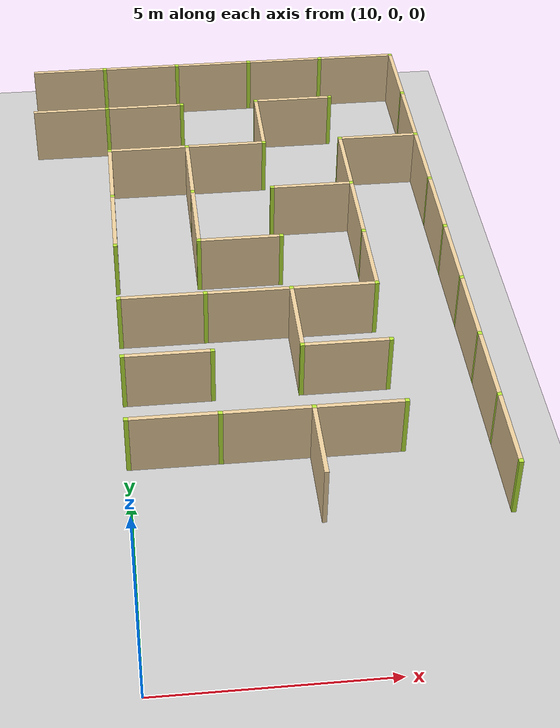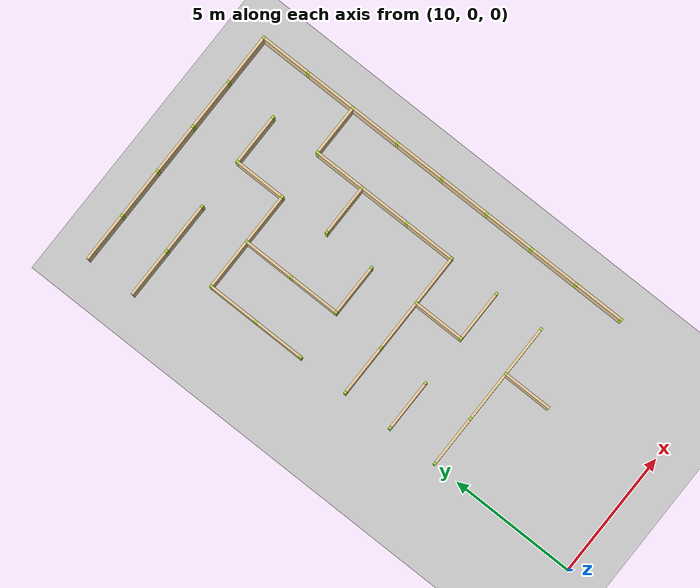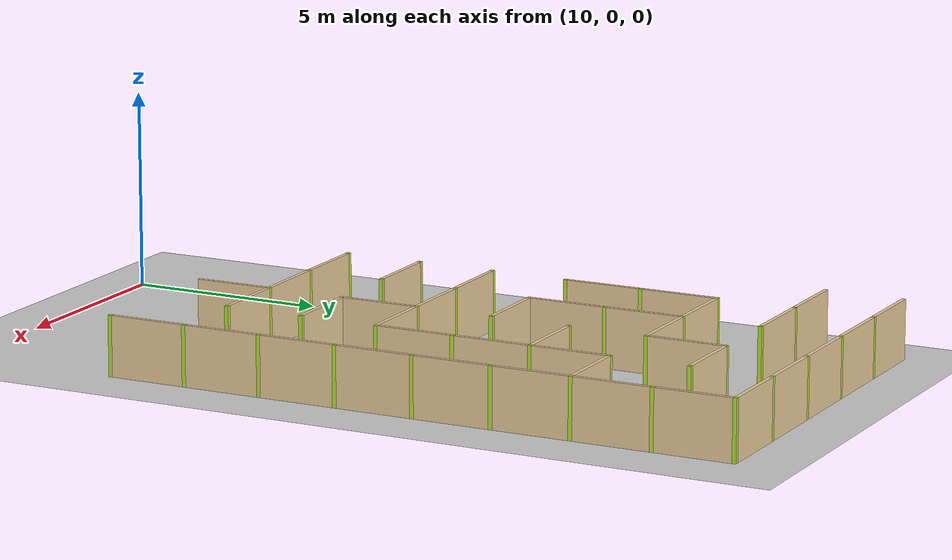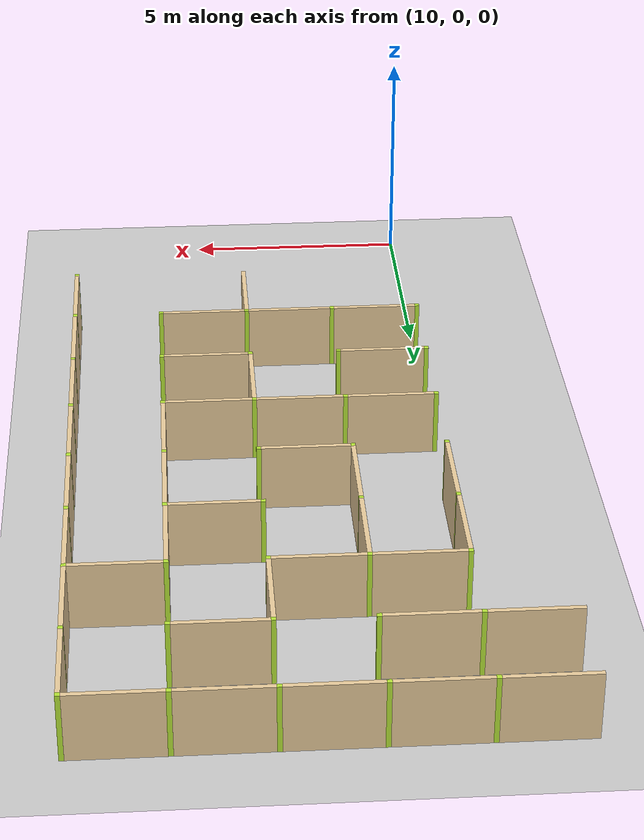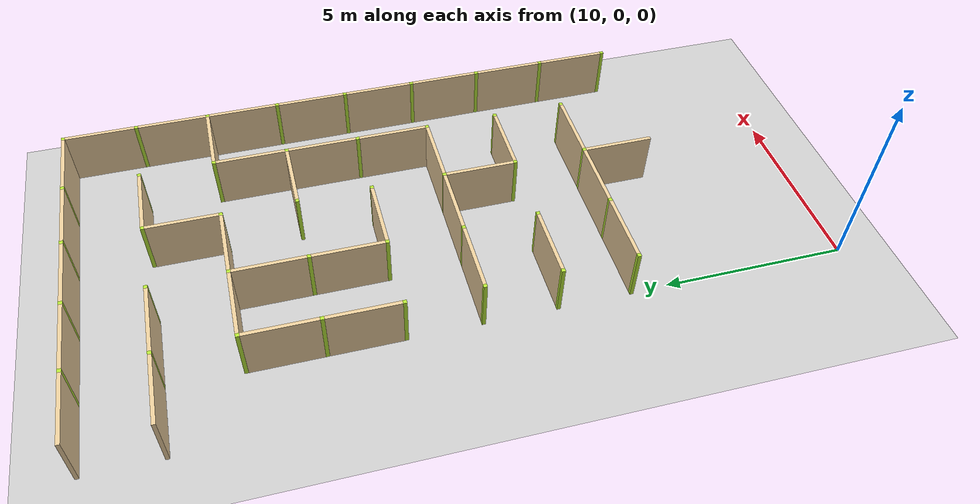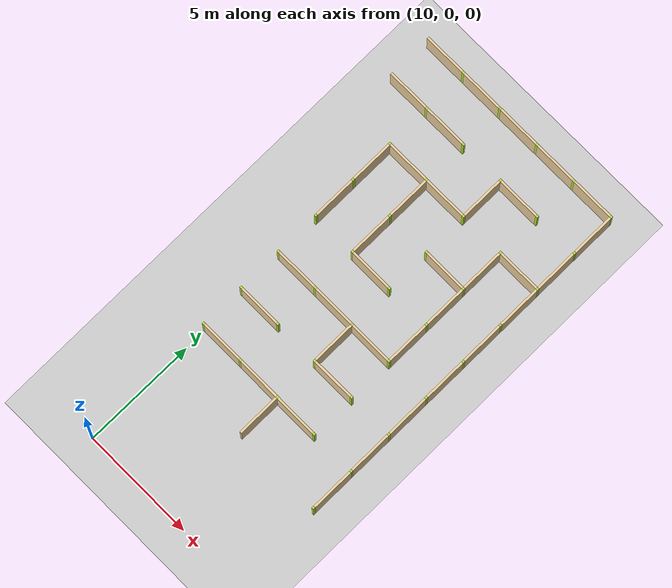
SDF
<sdf version="1.4">
 <world name="maze_world">
  <model name="ground">
   <static>true</static>
   <link name="ground_link">
    <collision name="collision1"><geometry><plane><normal>0 0 1</normal></plane></geometry></collision>
    <visual name="visual1"><geometry><plane><normal>0 0 1</normal><size>100 100</size></plane></geometry></visual>
   </link>
  </model>
  <model name="Untitled">
   <link name="Wall_14_0_h">
    <collision name="Wall_0_Collision">
     <geometry><box><size>1.9 0.1 1.5</size></box></geometry>
     <pose>0 0 0.75 0 -0 0</pose>
    </collision>
    <visual name="Wall_0_Visual">
     <pose>0 0 0.75 0 -0 0</pose>
     <geometry><box><size>1.9 0.1 1.5</size></box></geometry>
     <material>
      <script><uri>file://media/materials/scripts/gazebo.material</uri><name>Gazebo/Grey</name></script>
      <ambient>0.921569 0.807843 0.615686 1</ambient>
     </material>
     <meta><layer>0</layer></meta>
    </visual>
    <pose>9.0 20 0 0 -0 0</pose>
   </link>
   <link name="Wall_15_0_h">
    <collision name="Wall_0_Collision">
     <geometry><box><size>1.9 0.1 1.5</size></box></geometry>
     <pose>0 0 0.75 0 -0 0</pose>
    </collision>
    <visual name="Wall_0_Visual">
     <pose>0 0 0.75 0 -0 0</pose>
     <geometry><box><size>1.9 0.1 1.5</size></box></geometry>
     <material>
      <script><uri>file://media/materials/scripts/gazebo.material</uri><name>Gazebo/Grey</name></script>
      <ambient>0.921569 0.807843 0.615686 1</ambient>
     </material>
     <meta><layer>0</layer></meta>
    </visual>
    <pose>11.0 20 0 0 -0 0</pose>
   </link>
   <link name="Joint_10_20">
    <collision name="Wall_2_Collision">
     <geometry><box><size>0.1 0.1 1.5</size></box></geometry>
     <pose>0 0 0.75 0 -0 0</pose>
    </collision>
    <visual name="Wall_2_Visual">
     <pose>0 0 0.75 0 -0 0</pose>
     <geometry><box><size>0.1 0.1 1.5</size></box></geometry>
     <material>
      <script><uri>file://media/materials/scripts/gazebo.material</uri><name>Gazebo/Grey</name></script>
      <ambient>0.721569 0.907843 0.215686 1</ambient>
     </material>
     <meta><layer>0</layer></meta>
    </visual>
    <pose>10 20 0 0 -0 0</pose>
   </link>
   <link name="Wall_16_0_h">
    <collision name="Wall_0_Collision">
     <geometry><box><size>1.9 0.1 1.5</size></box></geometry>
     <pose>0 0 0.75 0 -0 0</pose>
    </collision>
    <visual name="Wall_0_Visual">
     <pose>0 0 0.75 0 -0 0</pose>
     <geometry><box><size>1.9 0.1 1.5</size></box></geometry>
     <material>
      <script><uri>file://media/materials/scripts/gazebo.material</uri><name>Gazebo/Grey</name></script>
      <ambient>0.921569 0.807843 0.615686 1</ambient>
     </material>
     <meta><layer>0</layer></meta>
    </visual>
    <pose>13.0 20 0 0 -0 0</pose>
   </link>
   <link name="Joint_12_20">
    <collision name="Wall_2_Collision">
     <geometry><box><size>0.1 0.1 1.5</size></box></geometry>
     <pose>0 0 0.75 0 -0 0</pose>
    </collision>
    <visual name="Wall_2_Visual">
     <pose>0 0 0.75 0 -0 0</pose>
     <geometry><box><size>0.1 0.1 1.5</size></box></geometry>
     <material>
      <script><uri>file://media/materials/scripts/gazebo.material</uri><name>Gazebo/Grey</name></script>
      <ambient>0.721569 0.907843 0.215686 1</ambient>
     </material>
     <meta><layer>0</layer></meta>
    </visual>
    <pose>12 20 0 0 -0 0</pose>
   </link>
   <link name="Wall_17_0_h">
    <collision name="Wall_0_Collision">
     <geometry><box><size>1.9 0.1 1.5</size></box></geometry>
     <pose>0 0 0.75 0 -0 0</pose>
    </collision>
    <visual name="Wall_0_Visual">
     <pose>0 0 0.75 0 -0 0</pose>
     <geometry><box><size>1.9 0.1 1.5</size></box></geometry>
     <material>
      <script><uri>file://media/materials/scripts/gazebo.material</uri><name>Gazebo/Grey</name></script>
      <ambient>0.921569 0.807843 0.615686 1</ambient>
     </material>
     <meta><layer>0</layer></meta>
    </visual>
    <pose>15.0 20 0 0 -0 0</pose>
   </link>
   <link name="Joint_14_20">
    <collision name="Wall_2_Collision">
     <geometry><box><size>0.1 0.1 1.5</size></box></geometry>
     <pose>0 0 0.75 0 -0 0</pose>
    </collision>
    <visual name="Wall_2_Visual">
     <pose>0 0 0.75 0 -0 0</pose>
     <geometry><box><size>0.1 0.1 1.5</size></box></geometry>
     <material>
      <script><uri>file://media/materials/scripts/gazebo.material</uri><name>Gazebo/Grey</name></script>
      <ambient>0.721569 0.907843 0.215686 1</ambient>
     </material>
     <meta><layer>0</layer></meta>
    </visual>
    <pose>14 20 0 0 -0 0</pose>
   </link>
   <link name="Wall_18_0_h">
    <collision name="Wall_0_Collision">
     <geometry><box><size>1.9 0.1 1.5</size></box></geometry>
     <pose>0 0 0.75 0 -0 0</pose>
    </collision>
    <visual name="Wall_0_Visual">
     <pose>0 0 0.75 0 -0 0</pose>
     <geometry><box><size>1.9 0.1 1.5</size></box></geometry>
     <material>
      <script><uri>file://media/materials/scripts/gazebo.material</uri><name>Gazebo/Grey</name></script>
      <ambient>0.921569 0.807843 0.615686 1</ambient>
     </material>
     <meta><layer>0</layer></meta>
    </visual>
    <pose>17.0 20 0 0 -0 0</pose>
   </link>
   <link name="Joint_16_20">
    <collision name="Wall_2_Collision">
     <geometry><box><size>0.1 0.1 1.5</size></box></geometry>
     <pose>0 0 0.75 0 -0 0</pose>
    </collision>
    <visual name="Wall_2_Visual">
     <pose>0 0 0.75 0 -0 0</pose>
     <geometry><box><size>0.1 0.1 1.5</size></box></geometry>
     <material>
      <script><uri>file://media/materials/scripts/gazebo.material</uri><name>Gazebo/Grey</name></script>
      <ambient>0.721569 0.907843 0.215686 1</ambient>
     </material>
     <meta><layer>0</layer></meta>
    </visual>
    <pose>16 20 0 0 -0 0</pose>
   </link>
   <link name="Wall_19_0_v">
    <collision name="Wall_0_Collision">
     <geometry><box><size>1.9 0.1 1.5</size></box></geometry>
     <pose>0 0 0.75 0 -0 0</pose>
    </collision>
    <visual name="Wall_0_Visual">
     <pose>0 0 0.75 0 -0 0</pose>
     <geometry><box><size>1.9 0.1 1.5</size></box></geometry>
     <material>
      <script><uri>file://media/materials/scripts/gazebo.material</uri><name>Gazebo/Grey</name></script>
      <ambient>0.921569 0.807843 0.615686 1</ambient>
     </material>
     <meta><layer>0</layer></meta>
    </visual>
    <pose>18 19.0 0 0 -0 1.5708</pose>
   </link>
   <link name="Joint_18_20">
    <collision name="Wall_2_Collision">
     <geometry><box><size>0.1 0.1 1.5</size></box></geometry>
     <pose>0 0 0.75 0 -0 0</pose>
    </collision>
    <visual name="Wall_2_Visual">
     <pose>0 0 0.75 0 -0 0</pose>
     <geometry><box><size>0.1 0.1 1.5</size></box></geometry>
     <material>
      <script><uri>file://media/materials/scripts/gazebo.material</uri><name>Gazebo/Grey</name></script>
      <ambient>0.721569 0.907843 0.215686 1</ambient>
     </material>
     <meta><layer>0</layer></meta>
    </visual>
    <pose>18 20 0 0 -0 0</pose>
   </link>
   <link name="Wall_14_1_h">
    <collision name="Wall_0_Collision">
     <geometry><box><size>1.9 0.1 1.5</size></box></geometry>
     <pose>0 0 0.75 0 -0 0</pose>
    </collision>
    <visual name="Wall_0_Visual">
     <pose>0 0 0.75 0 -0 0</pose>
     <geometry><box><size>1.9 0.1 1.5</size></box></geometry>
     <material>
      <script><uri>file://media/materials/scripts/gazebo.material</uri><name>Gazebo/Grey</name></script>
      <ambient>0.921569 0.807843 0.615686 1</ambient>
     </material>
     <meta><layer>0</layer></meta>
    </visual>
    <pose>9.0 18 0 0 -0 0</pose>
   </link>
   <link name="Wall_15_1_h">
    <collision name="Wall_0_Collision">
     <geometry><box><size>1.9 0.1 1.5</size></box></geometry>
     <pose>0 0 0.75 0 -0 0</pose>
    </collision>
    <visual name="Wall_0_Visual">
     <pose>0 0 0.75 0 -0 0</pose>
     <geometry><box><size>1.9 0.1 1.5</size></box></geometry>
     <material>
      <script><uri>file://media/materials/scripts/gazebo.material</uri><name>Gazebo/Grey</name></script>
      <ambient>0.921569 0.807843 0.615686 1</ambient>
     </material>
     <meta><layer>0</layer></meta>
    </visual>
    <pose>11.0 18 0 0 -0 0</pose>
   </link>
   <link name="Joint_10_18">
    <collision name="Wall_2_Collision">
     <geometry><box><size>0.1 0.1 1.5</size></box></geometry>
     <pose>0 0 0.75 0 -0 0</pose>
    </collision>
    <visual name="Wall_2_Visual">
     <pose>0 0 0.75 0 -0 0</pose>
     <geometry><box><size>0.1 0.1 1.5</size></box></geometry>
     <material>
      <script><uri>file://media/materials/scripts/gazebo.material</uri><name>Gazebo/Grey</name></script>
      <ambient>0.721569 0.907843 0.215686 1</ambient>
     </material>
     <meta><layer>0</layer></meta>
    </visual>
    <pose>10 18 0 0 -0 0</pose>
   </link>
   <link name="Joint_12_18">
    <collision name="Wall_2_Collision">
     <geometry><box><size>0.1 0.1 1.5</size></box></geometry>
     <pose>0 0 0.75 0 -0 0</pose>
    </collision>
    <visual name="Wall_2_Visual">
     <pose>0 0 0.75 0 -0 0</pose>
     <geometry><box><size>0.1 0.1 1.5</size></box></geometry>
     <material>
      <script><uri>file://media/materials/scripts/gazebo.material</uri><name>Gazebo/Grey</name></script>
      <ambient>0.721569 0.907843 0.215686 1</ambient>
     </material>
     <meta><layer>0</layer></meta>
    </visual>
    <pose>12 18 0 0 -0 0</pose>
   </link>
   <link name="Wall_17_1_h">
    <collision name="Wall_0_Collision">
     <geometry><box><size>1.9 0.1 1.5</size></box></geometry>
     <pose>0 0 0.75 0 -0 0</pose>
    </collision>
    <visual name="Wall_0_Visual">
     <pose>0 0 0.75 0 -0 0</pose>
     <geometry><box><size>1.9 0.1 1.5</size></box></geometry>
     <material>
      <script><uri>file://media/materials/scripts/gazebo.material</uri><name>Gazebo/Grey</name></script>
      <ambient>0.921569 0.807843 0.615686 1</ambient>
     </material>
     <meta><layer>0</layer></meta>
    </visual>
    <pose>15.0 18 0 0 -0 0</pose>
   </link>
   <link name="Wall_17_1_v">
    <collision name="Wall_0_Collision">
     <geometry><box><size>1.9 0.1 1.5</size></box></geometry>
     <pose>0 0 0.75 0 -0 0</pose>
    </collision>
    <visual name="Wall_0_Visual">
     <pose>0 0 0.75 0 -0 0</pose>
     <geometry><box><size>1.9 0.1 1.5</size></box></geometry>
     <material>
      <script><uri>file://media/materials/scripts/gazebo.material</uri><name>Gazebo/Grey</name></script>
      <ambient>0.921569 0.807843 0.615686 1</ambient>
     </material>
     <meta><layer>0</layer></meta>
    </visual>
    <pose>14 17.0 0 0 -0 1.5708</pose>
   </link>
   <link name="Joint_14_18">
    <collision name="Wall_2_Collision">
     <geometry><box><size>0.1 0.1 1.5</size></box></geometry>
     <pose>0 0 0.75 0 -0 0</pose>
    </collision>
    <visual name="Wall_2_Visual">
     <pose>0 0 0.75 0 -0 0</pose>
     <geometry><box><size>0.1 0.1 1.5</size></box></geometry>
     <material>
      <script><uri>file://media/materials/scripts/gazebo.material</uri><name>Gazebo/Grey</name></script>
      <ambient>0.721569 0.907843 0.215686 1</ambient>
     </material>
     <meta><layer>0</layer></meta>
    </visual>
    <pose>14 18 0 0 -0 0</pose>
   </link>
   <link name="Joint_16_18">
    <collision name="Wall_2_Collision">
     <geometry><box><size>0.1 0.1 1.5</size></box></geometry>
     <pose>0 0 0.75 0 -0 0</pose>
    </collision>
    <visual name="Wall_2_Visual">
     <pose>0 0 0.75 0 -0 0</pose>
     <geometry><box><size>0.1 0.1 1.5</size></box></geometry>
     <material>
      <script><uri>file://media/materials/scripts/gazebo.material</uri><name>Gazebo/Grey</name></script>
      <ambient>0.721569 0.907843 0.215686 1</ambient>
     </material>
     <meta><layer>0</layer></meta>
    </visual>
    <pose>16 18 0 0 -0 0</pose>
   </link>
   <link name="Wall_19_1_v">
    <collision name="Wall_0_Collision">
     <geometry><box><size>1.9 0.1 1.5</size></box></geometry>
     <pose>0 0 0.75 0 -0 0</pose>
    </collision>
    <visual name="Wall_0_Visual">
     <pose>0 0 0.75 0 -0 0</pose>
     <geometry><box><size>1.9 0.1 1.5</size></box></geometry>
     <material>
      <script><uri>file://media/materials/scripts/gazebo.material</uri><name>Gazebo/Grey</name></script>
      <ambient>0.921569 0.807843 0.615686 1</ambient>
     </material>
     <meta><layer>0</layer></meta>
    </visual>
    <pose>18 17.0 0 0 -0 1.5708</pose>
   </link>
   <link name="Joint_18_18">
    <collision name="Wall_2_Collision">
     <geometry><box><size>0.1 0.1 1.5</size></box></geometry>
     <pose>0 0 0.75 0 -0 0</pose>
    </collision>
    <visual name="Wall_2_Visual">
     <pose>0 0 0.75 0 -0 0</pose>
     <geometry><box><size>0.1 0.1 1.5</size></box></geometry>
     <material>
      <script><uri>file://media/materials/scripts/gazebo.material</uri><name>Gazebo/Grey</name></script>
      <ambient>0.721569 0.907843 0.215686 1</ambient>
     </material>
     <meta><layer>0</layer></meta>
    </visual>
    <pose>18 18 0 0 -0 0</pose>
   </link>
   <link name="Wall_15_2_h">
    <collision name="Wall_0_Collision">
     <geometry><box><size>1.9 0.1 1.5</size></box></geometry>
     <pose>0 0 0.75 0 -0 0</pose>
    </collision>
    <visual name="Wall_0_Visual">
     <pose>0 0 0.75 0 -0 0</pose>
     <geometry><box><size>1.9 0.1 1.5</size></box></geometry>
     <material>
      <script><uri>file://media/materials/scripts/gazebo.material</uri><name>Gazebo/Grey</name></script>
      <ambient>0.921569 0.807843 0.615686 1</ambient>
     </material>
     <meta><layer>0</layer></meta>
    </visual>
    <pose>11.0 16 0 0 -0 0</pose>
   </link>
   <link name="Wall_15_2_v">
    <collision name="Wall_0_Collision">
     <geometry><box><size>1.9 0.1 1.5</size></box></geometry>
     <pose>0 0 0.75 0 -0 0</pose>
    </collision>
    <visual name="Wall_0_Visual">
     <pose>0 0 0.75 0 -0 0</pose>
     <geometry><box><size>1.9 0.1 1.5</size></box></geometry>
     <material>
      <script><uri>file://media/materials/scripts/gazebo.material</uri><name>Gazebo/Grey</name></script>
      <ambient>0.921569 0.807843 0.615686 1</ambient>
     </material>
     <meta><layer>0</layer></meta>
    </visual>
    <pose>10 15.0 0 0 -0 1.5708</pose>
   </link>
   <link name="Joint_10_16">
    <collision name="Wall_2_Collision">
     <geometry><box><size>0.1 0.1 1.5</size></box></geometry>
     <pose>0 0 0.75 0 -0 0</pose>
    </collision>
    <visual name="Wall_2_Visual">
     <pose>0 0 0.75 0 -0 0</pose>
     <geometry><box><size>0.1 0.1 1.5</size></box></geometry>
     <material>
      <script><uri>file://media/materials/scripts/gazebo.material</uri><name>Gazebo/Grey</name></script>
      <ambient>0.721569 0.907843 0.215686 1</ambient>
     </material>
     <meta><layer>0</layer></meta>
    </visual>
    <pose>10 16 0 0 -0 0</pose>
   </link>
   <link name="Wall_16_2_h">
    <collision name="Wall_0_Collision">
     <geometry><box><size>1.9 0.1 1.5</size></box></geometry>
     <pose>0 0 0.75 0 -0 0</pose>
    </collision>
    <visual name="Wall_0_Visual">
     <pose>0 0 0.75 0 -0 0</pose>
     <geometry><box><size>1.9 0.1 1.5</size></box></geometry>
     <material>
      <script><uri>file://media/materials/scripts/gazebo.material</uri><name>Gazebo/Grey</name></script>
      <ambient>0.921569 0.807843 0.615686 1</ambient>
     </material>
     <meta><layer>0</layer></meta>
    </visual>
    <pose>13.0 16 0 0 -0 0</pose>
   </link>
   <link name="Wall_16_2_v">
    <collision name="Wall_0_Collision">
     <geometry><box><size>1.9 0.1 1.5</size></box></geometry>
     <pose>0 0 0.75 0 -0 0</pose>
    </collision>
    <visual name="Wall_0_Visual">
     <pose>0 0 0.75 0 -0 0</pose>
     <geometry><box><size>1.9 0.1 1.5</size></box></geometry>
     <material>
      <script><uri>file://media/materials/scripts/gazebo.material</uri><name>Gazebo/Grey</name></script>
      <ambient>0.921569 0.807843 0.615686 1</ambient>
     </material>
     <meta><layer>0</layer></meta>
    </visual>
    <pose>12 15.0 0 0 -0 1.5708</pose>
   </link>
   <link name="Joint_12_16">
    <collision name="Wall_2_Collision">
     <geometry><box><size>0.1 0.1 1.5</size></box></geometry>
     <pose>0 0 0.75 0 -0 0</pose>
    </collision>
    <visual name="Wall_2_Visual">
     <pose>0 0 0.75 0 -0 0</pose>
     <geometry><box><size>0.1 0.1 1.5</size></box></geometry>
     <material>
      <script><uri>file://media/materials/scripts/gazebo.material</uri><name>Gazebo/Grey</name></script>
      <ambient>0.721569 0.907843 0.215686 1</ambient>
     </material>
     <meta><layer>0</layer></meta>
    </visual>
    <pose>12 16 0 0 -0 0</pose>
   </link>
   <link name="Joint_14_16">
    <collision name="Wall_2_Collision">
     <geometry><box><size>0.1 0.1 1.5</size></box></geometry>
     <pose>0 0 0.75 0 -0 0</pose>
    </collision>
    <visual name="Wall_2_Visual">
     <pose>0 0 0.75 0 -0 0</pose>
     <geometry><box><size>0.1 0.1 1.5</size></box></geometry>
     <material>
      <script><uri>file://media/materials/scripts/gazebo.material</uri><name>Gazebo/Grey</name></script>
      <ambient>0.721569 0.907843 0.215686 1</ambient>
     </material>
     <meta><layer>0</layer></meta>
    </visual>
    <pose>14 16 0 0 -0 0</pose>
   </link>
   <link name="Wall_18_2_h">
    <collision name="Wall_0_Collision">
     <geometry><box><size>1.9 0.1 1.5</size></box></geometry>
     <pose>0 0 0.75 0 -0 0</pose>
    </collision>
    <visual name="Wall_0_Visual">
     <pose>0 0 0.75 0 -0 0</pose>
     <geometry><box><size>1.9 0.1 1.5</size></box></geometry>
     <material>
      <script><uri>file://media/materials/scripts/gazebo.material</uri><name>Gazebo/Grey</name></script>
      <ambient>0.921569 0.807843 0.615686 1</ambient>
     </material>
     <meta><layer>0</layer></meta>
    </visual>
    <pose>17.0 16 0 0 -0 0</pose>
   </link>
   <link name="Wall_18_2_v">
    <collision name="Wall_0_Collision">
     <geometry><box><size>1.9 0.1 1.5</size></box></geometry>
     <pose>0 0 0.75 0 -0 0</pose>
    </collision>
    <visual name="Wall_0_Visual">
     <pose>0 0 0.75 0 -0 0</pose>
     <geometry><box><size>1.9 0.1 1.5</size></box></geometry>
     <material>
      <script><uri>file://media/materials/scripts/gazebo.material</uri><name>Gazebo/Grey</name></script>
      <ambient>0.921569 0.807843 0.615686 1</ambient>
     </material>
     <meta><layer>0</layer></meta>
    </visual>
    <pose>16 15.0 0 0 -0 1.5708</pose>
   </link>
   <link name="Joint_16_16">
    <collision name="Wall_2_Collision">
     <geometry><box><size>0.1 0.1 1.5</size></box></geometry>
     <pose>0 0 0.75 0 -0 0</pose>
    </collision>
    <visual name="Wall_2_Visual">
     <pose>0 0 0.75 0 -0 0</pose>
     <geometry><box><size>0.1 0.1 1.5</size></box></geometry>
     <material>
      <script><uri>file://media/materials/scripts/gazebo.material</uri><name>Gazebo/Grey</name></script>
      <ambient>0.721569 0.907843 0.215686 1</ambient>
     </material>
     <meta><layer>0</layer></meta>
    </visual>
    <pose>16 16 0 0 -0 0</pose>
   </link>
   <link name="Wall_19_2_v">
    <collision name="Wall_0_Collision">
     <geometry><box><size>1.9 0.1 1.5</size></box></geometry>
     <pose>0 0 0.75 0 -0 0</pose>
    </collision>
    <visual name="Wall_0_Visual">
     <pose>0 0 0.75 0 -0 0</pose>
     <geometry><box><size>1.9 0.1 1.5</size></box></geometry>
     <material>
      <script><uri>file://media/materials/scripts/gazebo.material</uri><name>Gazebo/Grey</name></script>
      <ambient>0.921569 0.807843 0.615686 1</ambient>
     </material>
     <meta><layer>0</layer></meta>
    </visual>
    <pose>18 15.0 0 0 -0 1.5708</pose>
   </link>
   <link name="Joint_18_16">
    <collision name="Wall_2_Collision">
     <geometry><box><size>0.1 0.1 1.5</size></box></geometry>
     <pose>0 0 0.75 0 -0 0</pose>
    </collision>
    <visual name="Wall_2_Visual">
     <pose>0 0 0.75 0 -0 0</pose>
     <geometry><box><size>0.1 0.1 1.5</size></box></geometry>
     <material>
      <script><uri>file://media/materials/scripts/gazebo.material</uri><name>Gazebo/Grey</name></script>
      <ambient>0.721569 0.907843 0.215686 1</ambient>
     </material>
     <meta><layer>0</layer></meta>
    </visual>
    <pose>18 16 0 0 -0 0</pose>
   </link>
   <link name="Wall_15_3_v">
    <collision name="Wall_0_Collision">
     <geometry><box><size>1.9 0.1 1.5</size></box></geometry>
     <pose>0 0 0.75 0 -0 0</pose>
    </collision>
    <visual name="Wall_0_Visual">
     <pose>0 0 0.75 0 -0 0</pose>
     <geometry><box><size>1.9 0.1 1.5</size></box></geometry>
     <material>
      <script><uri>file://media/materials/scripts/gazebo.material</uri><name>Gazebo/Grey</name></script>
      <ambient>0.921569 0.807843 0.615686 1</ambient>
     </material>
     <meta><layer>0</layer></meta>
    </visual>
    <pose>10 13.0 0 0 -0 1.5708</pose>
   </link>
   <link name="Joint_10_14">
    <collision name="Wall_2_Collision">
     <geometry><box><size>0.1 0.1 1.5</size></box></geometry>
     <pose>0 0 0.75 0 -0 0</pose>
    </collision>
    <visual name="Wall_2_Visual">
     <pose>0 0 0.75 0 -0 0</pose>
     <geometry><box><size>0.1 0.1 1.5</size></box></geometry>
     <material>
      <script><uri>file://media/materials/scripts/gazebo.material</uri><name>Gazebo/Grey</name></script>
      <ambient>0.721569 0.907843 0.215686 1</ambient>
     </material>
     <meta><layer>0</layer></meta>
    </visual>
    <pose>10 14 0 0 -0 0</pose>
   </link>
   <link name="Wall_16_3_v">
    <collision name="Wall_0_Collision">
     <geometry><box><size>1.9 0.1 1.5</size></box></geometry>
     <pose>0 0 0.75 0 -0 0</pose>
    </collision>
    <visual name="Wall_0_Visual">
     <pose>0 0 0.75 0 -0 0</pose>
     <geometry><box><size>1.9 0.1 1.5</size></box></geometry>
     <material>
      <script><uri>file://media/materials/scripts/gazebo.material</uri><name>Gazebo/Grey</name></script>
      <ambient>0.921569 0.807843 0.615686 1</ambient>
     </material>
     <meta><layer>0</layer></meta>
    </visual>
    <pose>12 13.0 0 0 -0 1.5708</pose>
   </link>
   <link name="Joint_12_14">
    <collision name="Wall_2_Collision">
     <geometry><box><size>0.1 0.1 1.5</size></box></geometry>
     <pose>0 0 0.75 0 -0 0</pose>
    </collision>
    <visual name="Wall_2_Visual">
     <pose>0 0 0.75 0 -0 0</pose>
     <geometry><box><size>0.1 0.1 1.5</size></box></geometry>
     <material>
      <script><uri>file://media/materials/scripts/gazebo.material</uri><name>Gazebo/Grey</name></script>
      <ambient>0.721569 0.907843 0.215686 1</ambient>
     </material>
     <meta><layer>0</layer></meta>
    </visual>
    <pose>12 14 0 0 -0 0</pose>
   </link>
   <link name="Wall_17_3_h">
    <collision name="Wall_0_Collision">
     <geometry><box><size>1.9 0.1 1.5</size></box></geometry>
     <pose>0 0 0.75 0 -0 0</pose>
    </collision>
    <visual name="Wall_0_Visual">
     <pose>0 0 0.75 0 -0 0</pose>
     <geometry><box><size>1.9 0.1 1.5</size></box></geometry>
     <material>
      <script><uri>file://media/materials/scripts/gazebo.material</uri><name>Gazebo/Grey</name></script>
      <ambient>0.921569 0.807843 0.615686 1</ambient>
     </material>
     <meta><layer>0</layer></meta>
    </visual>
    <pose>15.0 14 0 0 -0 0</pose>
   </link>
   <link name="Joint_14_14">
    <collision name="Wall_2_Collision">
     <geometry><box><size>0.1 0.1 1.5</size></box></geometry>
     <pose>0 0 0.75 0 -0 0</pose>
    </collision>
    <visual name="Wall_2_Visual">
     <pose>0 0 0.75 0 -0 0</pose>
     <geometry><box><size>0.1 0.1 1.5</size></box></geometry>
     <material>
      <script><uri>file://media/materials/scripts/gazebo.material</uri><name>Gazebo/Grey</name></script>
      <ambient>0.721569 0.907843 0.215686 1</ambient>
     </material>
     <meta><layer>0</layer></meta>
    </visual>
    <pose>14 14 0 0 -0 0</pose>
   </link>
   <link name="Wall_18_3_v">
    <collision name="Wall_0_Collision">
     <geometry><box><size>1.9 0.1 1.5</size></box></geometry>
     <pose>0 0 0.75 0 -0 0</pose>
    </collision>
    <visual name="Wall_0_Visual">
     <pose>0 0 0.75 0 -0 0</pose>
     <geometry><box><size>1.9 0.1 1.5</size></box></geometry>
     <material>
      <script><uri>file://media/materials/scripts/gazebo.material</uri><name>Gazebo/Grey</name></script>
      <ambient>0.921569 0.807843 0.615686 1</ambient>
     </material>
     <meta><layer>0</layer></meta>
    </visual>
    <pose>16 13.0 0 0 -0 1.5708</pose>
   </link>
   <link name="Joint_16_14">
    <collision name="Wall_2_Collision">
     <geometry><box><size>0.1 0.1 1.5</size></box></geometry>
     <pose>0 0 0.75 0 -0 0</pose>
    </collision>
    <visual name="Wall_2_Visual">
     <pose>0 0 0.75 0 -0 0</pose>
     <geometry><box><size>0.1 0.1 1.5</size></box></geometry>
     <material>
      <script><uri>file://media/materials/scripts/gazebo.material</uri><name>Gazebo/Grey</name></script>
      <ambient>0.721569 0.907843 0.215686 1</ambient>
     </material>
     <meta><layer>0</layer></meta>
    </visual>
    <pose>16 14 0 0 -0 0</pose>
   </link>
   <link name="Wall_19_3_v">
    <collision name="Wall_0_Collision">
     <geometry><box><size>1.9 0.1 1.5</size></box></geometry>
     <pose>0 0 0.75 0 -0 0</pose>
    </collision>
    <visual name="Wall_0_Visual">
     <pose>0 0 0.75 0 -0 0</pose>
     <geometry><box><size>1.9 0.1 1.5</size></box></geometry>
     <material>
      <script><uri>file://media/materials/scripts/gazebo.material</uri><name>Gazebo/Grey</name></script>
      <ambient>0.921569 0.807843 0.615686 1</ambient>
     </material>
     <meta><layer>0</layer></meta>
    </visual>
    <pose>18 13.0 0 0 -0 1.5708</pose>
   </link>
   <link name="Joint_18_14">
    <collision name="Wall_2_Collision">
     <geometry><box><size>0.1 0.1 1.5</size></box></geometry>
     <pose>0 0 0.75 0 -0 0</pose>
    </collision>
    <visual name="Wall_2_Visual">
     <pose>0 0 0.75 0 -0 0</pose>
     <geometry><box><size>0.1 0.1 1.5</size></box></geometry>
     <material>
      <script><uri>file://media/materials/scripts/gazebo.material</uri><name>Gazebo/Grey</name></script>
      <ambient>0.721569 0.907843 0.215686 1</ambient>
     </material>
     <meta><layer>0</layer></meta>
    </visual>
    <pose>18 14 0 0 -0 0</pose>
   </link>
   <link name="Joint_10_12">
    <collision name="Wall_2_Collision">
     <geometry><box><size>0.1 0.1 1.5</size></box></geometry>
     <pose>0 0 0.75 0 -0 0</pose>
    </collision>
    <visual name="Wall_2_Visual">
     <pose>0 0 0.75 0 -0 0</pose>
     <geometry><box><size>0.1 0.1 1.5</size></box></geometry>
     <material>
      <script><uri>file://media/materials/scripts/gazebo.material</uri><name>Gazebo/Grey</name></script>
      <ambient>0.721569 0.907843 0.215686 1</ambient>
     </material>
     <meta><layer>0</layer></meta>
    </visual>
    <pose>10 12 0 0 -0 0</pose>
   </link>
   <link name="Wall_16_4_h">
    <collision name="Wall_0_Collision">
     <geometry><box><size>1.9 0.1 1.5</size></box></geometry>
     <pose>0 0 0.75 0 -0 0</pose>
    </collision>
    <visual name="Wall_0_Visual">
     <pose>0 0 0.75 0 -0 0</pose>
     <geometry><box><size>1.9 0.1 1.5</size></box></geometry>
     <material>
      <script><uri>file://media/materials/scripts/gazebo.material</uri><name>Gazebo/Grey</name></script>
      <ambient>0.921569 0.807843 0.615686 1</ambient>
     </material>
     <meta><layer>0</layer></meta>
    </visual>
    <pose>13.0 12 0 0 -0 0</pose>
   </link>
   <link name="Joint_12_12">
    <collision name="Wall_2_Collision">
     <geometry><box><size>0.1 0.1 1.5</size></box></geometry>
     <pose>0 0 0.75 0 -0 0</pose>
    </collision>
    <visual name="Wall_2_Visual">
     <pose>0 0 0.75 0 -0 0</pose>
     <geometry><box><size>0.1 0.1 1.5</size></box></geometry>
     <material>
      <script><uri>file://media/materials/scripts/gazebo.material</uri><name>Gazebo/Grey</name></script>
      <ambient>0.721569 0.907843 0.215686 1</ambient>
     </material>
     <meta><layer>0</layer></meta>
    </visual>
    <pose>12 12 0 0 -0 0</pose>
   </link>
   <link name="Joint_14_12">
    <collision name="Wall_2_Collision">
     <geometry><box><size>0.1 0.1 1.5</size></box></geometry>
     <pose>0 0 0.75 0 -0 0</pose>
    </collision>
    <visual name="Wall_2_Visual">
     <pose>0 0 0.75 0 -0 0</pose>
     <geometry><box><size>0.1 0.1 1.5</size></box></geometry>
     <material>
      <script><uri>file://media/materials/scripts/gazebo.material</uri><name>Gazebo/Grey</name></script>
      <ambient>0.721569 0.907843 0.215686 1</ambient>
     </material>
     <meta><layer>0</layer></meta>
    </visual>
    <pose>14 12 0 0 -0 0</pose>
   </link>
   <link name="Wall_18_4_v">
    <collision name="Wall_0_Collision">
     <geometry><box><size>1.9 0.1 1.5</size></box></geometry>
     <pose>0 0 0.75 0 -0 0</pose>
    </collision>
    <visual name="Wall_0_Visual">
     <pose>0 0 0.75 0 -0 0</pose>
     <geometry><box><size>1.9 0.1 1.5</size></box></geometry>
     <material>
      <script><uri>file://media/materials/scripts/gazebo.material</uri><name>Gazebo/Grey</name></script>
      <ambient>0.921569 0.807843 0.615686 1</ambient>
     </material>
     <meta><layer>0</layer></meta>
    </visual>
    <pose>16 11.0 0 0 -0 1.5708</pose>
   </link>
   <link name="Joint_16_12">
    <collision name="Wall_2_Collision">
     <geometry><box><size>0.1 0.1 1.5</size></box></geometry>
     <pose>0 0 0.75 0 -0 0</pose>
    </collision>
    <visual name="Wall_2_Visual">
     <pose>0 0 0.75 0 -0 0</pose>
     <geometry><box><size>0.1 0.1 1.5</size></box></geometry>
     <material>
      <script><uri>file://media/materials/scripts/gazebo.material</uri><name>Gazebo/Grey</name></script>
      <ambient>0.721569 0.907843 0.215686 1</ambient>
     </material>
     <meta><layer>0</layer></meta>
    </visual>
    <pose>16 12 0 0 -0 0</pose>
   </link>
   <link name="Wall_19_4_v">
    <collision name="Wall_0_Collision">
     <geometry><box><size>1.9 0.1 1.5</size></box></geometry>
     <pose>0 0 0.75 0 -0 0</pose>
    </collision>
    <visual name="Wall_0_Visual">
     <pose>0 0 0.75 0 -0 0</pose>
     <geometry><box><size>1.9 0.1 1.5</size></box></geometry>
     <material>
      <script><uri>file://media/materials/scripts/gazebo.material</uri><name>Gazebo/Grey</name></script>
      <ambient>0.921569 0.807843 0.615686 1</ambient>
     </material>
     <meta><layer>0</layer></meta>
    </visual>
    <pose>18 11.0 0 0 -0 1.5708</pose>
   </link>
   <link name="Joint_18_12">
    <collision name="Wall_2_Collision">
     <geometry><box><size>0.1 0.1 1.5</size></box></geometry>
     <pose>0 0 0.75 0 -0 0</pose>
    </collision>
    <visual name="Wall_2_Visual">
     <pose>0 0 0.75 0 -0 0</pose>
     <geometry><box><size>0.1 0.1 1.5</size></box></geometry>
     <material>
      <script><uri>file://media/materials/scripts/gazebo.material</uri><name>Gazebo/Grey</name></script>
      <ambient>0.721569 0.907843 0.215686 1</ambient>
     </material>
     <meta><layer>0</layer></meta>
    </visual>
    <pose>18 12 0 0 -0 0</pose>
   </link>
   <link name="Wall_15_5_h">
    <collision name="Wall_0_Collision">
     <geometry><box><size>1.9 0.1 1.5</size></box></geometry>
     <pose>0 0 0.75 0 -0 0</pose>
    </collision>
    <visual name="Wall_0_Visual">
     <pose>0 0 0.75 0 -0 0</pose>
     <geometry><box><size>1.9 0.1 1.5</size></box></geometry>
     <material>
      <script><uri>file://media/materials/scripts/gazebo.material</uri><name>Gazebo/Grey</name></script>
      <ambient>0.921569 0.807843 0.615686 1</ambient>
     </material>
     <meta><layer>0</layer></meta>
    </visual>
    <pose>11.0 10 0 0 -0 0</pose>
   </link>
   <link name="Joint_10_10">
    <collision name="Wall_2_Collision">
     <geometry><box><size>0.1 0.1 1.5</size></box></geometry>
     <pose>0 0 0.75 0 -0 0</pose>
    </collision>
    <visual name="Wall_2_Visual">
     <pose>0 0 0.75 0 -0 0</pose>
     <geometry><box><size>0.1 0.1 1.5</size></box></geometry>
     <material>
      <script><uri>file://media/materials/scripts/gazebo.material</uri><name>Gazebo/Grey</name></script>
      <ambient>0.721569 0.907843 0.215686 1</ambient>
     </material>
     <meta><layer>0</layer></meta>
    </visual>
    <pose>10 10 0 0 -0 0</pose>
   </link>
   <link name="Wall_16_5_h">
    <collision name="Wall_0_Collision">
     <geometry><box><size>1.9 0.1 1.5</size></box></geometry>
     <pose>0 0 0.75 0 -0 0</pose>
    </collision>
    <visual name="Wall_0_Visual">
     <pose>0 0 0.75 0 -0 0</pose>
     <geometry><box><size>1.9 0.1 1.5</size></box></geometry>
     <material>
      <script><uri>file://media/materials/scripts/gazebo.material</uri><name>Gazebo/Grey</name></script>
      <ambient>0.921569 0.807843 0.615686 1</ambient>
     </material>
     <meta><layer>0</layer></meta>
    </visual>
    <pose>13.0 10 0 0 -0 0</pose>
   </link>
   <link name="Joint_12_10">
    <collision name="Wall_2_Collision">
     <geometry><box><size>0.1 0.1 1.5</size></box></geometry>
     <pose>0 0 0.75 0 -0 0</pose>
    </collision>
    <visual name="Wall_2_Visual">
     <pose>0 0 0.75 0 -0 0</pose>
     <geometry><box><size>0.1 0.1 1.5</size></box></geometry>
     <material>
      <script><uri>file://media/materials/scripts/gazebo.material</uri><name>Gazebo/Grey</name></script>
      <ambient>0.721569 0.907843 0.215686 1</ambient>
     </material>
     <meta><layer>0</layer></meta>
    </visual>
    <pose>12 10 0 0 -0 0</pose>
   </link>
   <link name="Wall_17_5_h">
    <collision name="Wall_0_Collision">
     <geometry><box><size>1.9 0.1 1.5</size></box></geometry>
     <pose>0 0 0.75 0 -0 0</pose>
    </collision>
    <visual name="Wall_0_Visual">
     <pose>0 0 0.75 0 -0 0</pose>
     <geometry><box><size>1.9 0.1 1.5</size></box></geometry>
     <material>
      <script><uri>file://media/materials/scripts/gazebo.material</uri><name>Gazebo/Grey</name></script>
      <ambient>0.921569 0.807843 0.615686 1</ambient>
     </material>
     <meta><layer>0</layer></meta>
    </visual>
    <pose>15.0 10 0 0 -0 0</pose>
   </link>
   <link name="Wall_17_5_v">
    <collision name="Wall_0_Collision">
     <geometry><box><size>1.9 0.1 1.5</size></box></geometry>
     <pose>0 0 0.75 0 -0 0</pose>
    </collision>
    <visual name="Wall_0_Visual">
     <pose>0 0 0.75 0 -0 0</pose>
     <geometry><box><size>1.9 0.1 1.5</size></box></geometry>
     <material>
      <script><uri>file://media/materials/scripts/gazebo.material</uri><name>Gazebo/Grey</name></script>
      <ambient>0.921569 0.807843 0.615686 1</ambient>
     </material>
     <meta><layer>0</layer></meta>
    </visual>
    <pose>14 9.0 0 0 -0 1.5708</pose>
   </link>
   <link name="Joint_14_10">
    <collision name="Wall_2_Collision">
     <geometry><box><size>0.1 0.1 1.5</size></box></geometry>
     <pose>0 0 0.75 0 -0 0</pose>
    </collision>
    <visual name="Wall_2_Visual">
     <pose>0 0 0.75 0 -0 0</pose>
     <geometry><box><size>0.1 0.1 1.5</size></box></geometry>
     <material>
      <script><uri>file://media/materials/scripts/gazebo.material</uri><name>Gazebo/Grey</name></script>
      <ambient>0.721569 0.907843 0.215686 1</ambient>
     </material>
     <meta><layer>0</layer></meta>
    </visual>
    <pose>14 10 0 0 -0 0</pose>
   </link>
   <link name="Joint_16_10">
    <collision name="Wall_2_Collision">
     <geometry><box><size>0.1 0.1 1.5</size></box></geometry>
     <pose>0 0 0.75 0 -0 0</pose>
    </collision>
    <visual name="Wall_2_Visual">
     <pose>0 0 0.75 0 -0 0</pose>
     <geometry><box><size>0.1 0.1 1.5</size></box></geometry>
     <material>
      <script><uri>file://media/materials/scripts/gazebo.material</uri><name>Gazebo/Grey</name></script>
      <ambient>0.721569 0.907843 0.215686 1</ambient>
     </material>
     <meta><layer>0</layer></meta>
    </visual>
    <pose>16 10 0 0 -0 0</pose>
   </link>
   <link name="Wall_19_5_v">
    <collision name="Wall_0_Collision">
     <geometry><box><size>1.9 0.1 1.5</size></box></geometry>
     <pose>0 0 0.75 0 -0 0</pose>
    </collision>
    <visual name="Wall_0_Visual">
     <pose>0 0 0.75 0 -0 0</pose>
     <geometry><box><size>1.9 0.1 1.5</size></box></geometry>
     <material>
      <script><uri>file://media/materials/scripts/gazebo.material</uri><name>Gazebo/Grey</name></script>
      <ambient>0.921569 0.807843 0.615686 1</ambient>
     </material>
     <meta><layer>0</layer></meta>
    </visual>
    <pose>18 9.0 0 0 -0 1.5708</pose>
   </link>
   <link name="Joint_18_10">
    <collision name="Wall_2_Collision">
     <geometry><box><size>0.1 0.1 1.5</size></box></geometry>
     <pose>0 0 0.75 0 -0 0</pose>
    </collision>
    <visual name="Wall_2_Visual">
     <pose>0 0 0.75 0 -0 0</pose>
     <geometry><box><size>0.1 0.1 1.5</size></box></geometry>
     <material>
      <script><uri>file://media/materials/scripts/gazebo.material</uri><name>Gazebo/Grey</name></script>
      <ambient>0.721569 0.907843 0.215686 1</ambient>
     </material>
     <meta><layer>0</layer></meta>
    </visual>
    <pose>18 10 0 0 -0 0</pose>
   </link>
   <link name="Wall_15_6_h">
    <collision name="Wall_0_Collision">
     <geometry><box><size>1.9 0.1 1.5</size></box></geometry>
     <pose>0 0 0.75 0 -0 0</pose>
    </collision>
    <visual name="Wall_0_Visual">
     <pose>0 0 0.75 0 -0 0</pose>
     <geometry><box><size>1.9 0.1 1.5</size></box></geometry>
     <material>
      <script><uri>file://media/materials/scripts/gazebo.material</uri><name>Gazebo/Grey</name></script>
      <ambient>0.921569 0.807843 0.615686 1</ambient>
     </material>
     <meta><layer>0</layer></meta>
    </visual>
    <pose>11.0 8 0 0 -0 0</pose>
   </link>
   <link name="Joint_10_8">
    <collision name="Wall_2_Collision">
     <geometry><box><size>0.1 0.1 1.5</size></box></geometry>
     <pose>0 0 0.75 0 -0 0</pose>
    </collision>
    <visual name="Wall_2_Visual">
     <pose>0 0 0.75 0 -0 0</pose>
     <geometry><box><size>0.1 0.1 1.5</size></box></geometry>
     <material>
      <script><uri>file://media/materials/scripts/gazebo.material</uri><name>Gazebo/Grey</name></script>
      <ambient>0.721569 0.907843 0.215686 1</ambient>
     </material>
     <meta><layer>0</layer></meta>
    </visual>
    <pose>10 8 0 0 -0 0</pose>
   </link>
   <link name="Joint_12_8">
    <collision name="Wall_2_Collision">
     <geometry><box><size>0.1 0.1 1.5</size></box></geometry>
     <pose>0 0 0.75 0 -0 0</pose>
    </collision>
    <visual name="Wall_2_Visual">
     <pose>0 0 0.75 0 -0 0</pose>
     <geometry><box><size>0.1 0.1 1.5</size></box></geometry>
     <material>
      <script><uri>file://media/materials/scripts/gazebo.material</uri><name>Gazebo/Grey</name></script>
      <ambient>0.721569 0.907843 0.215686 1</ambient>
     </material>
     <meta><layer>0</layer></meta>
    </visual>
    <pose>12 8 0 0 -0 0</pose>
   </link>
   <link name="Wall_17_6_h">
    <collision name="Wall_0_Collision">
     <geometry><box><size>1.9 0.1 1.5</size></box></geometry>
     <pose>0 0 0.75 0 -0 0</pose>
    </collision>
    <visual name="Wall_0_Visual">
     <pose>0 0 0.75 0 -0 0</pose>
     <geometry><box><size>1.9 0.1 1.5</size></box></geometry>
     <material>
      <script><uri>file://media/materials/scripts/gazebo.material</uri><name>Gazebo/Grey</name></script>
      <ambient>0.921569 0.807843 0.615686 1</ambient>
     </material>
     <meta><layer>0</layer></meta>
    </visual>
    <pose>15.0 8 0 0 -0 0</pose>
   </link>
   <link name="Joint_14_8">
    <collision name="Wall_2_Collision">
     <geometry><box><size>0.1 0.1 1.5</size></box></geometry>
     <pose>0 0 0.75 0 -0 0</pose>
    </collision>
    <visual name="Wall_2_Visual">
     <pose>0 0 0.75 0 -0 0</pose>
     <geometry><box><size>0.1 0.1 1.5</size></box></geometry>
     <material>
      <script><uri>file://media/materials/scripts/gazebo.material</uri><name>Gazebo/Grey</name></script>
      <ambient>0.721569 0.907843 0.215686 1</ambient>
     </material>
     <meta><layer>0</layer></meta>
    </visual>
    <pose>14 8 0 0 -0 0</pose>
   </link>
   <link name="Joint_16_8">
    <collision name="Wall_2_Collision">
     <geometry><box><size>0.1 0.1 1.5</size></box></geometry>
     <pose>0 0 0.75 0 -0 0</pose>
    </collision>
    <visual name="Wall_2_Visual">
     <pose>0 0 0.75 0 -0 0</pose>
     <geometry><box><size>0.1 0.1 1.5</size></box></geometry>
     <material>
      <script><uri>file://media/materials/scripts/gazebo.material</uri><name>Gazebo/Grey</name></script>
      <ambient>0.721569 0.907843 0.215686 1</ambient>
     </material>
     <meta><layer>0</layer></meta>
    </visual>
    <pose>16 8 0 0 -0 0</pose>
   </link>
   <link name="Wall_19_6_v">
    <collision name="Wall_0_Collision">
     <geometry><box><size>1.9 0.1 1.5</size></box></geometry>
     <pose>0 0 0.75 0 -0 0</pose>
    </collision>
    <visual name="Wall_0_Visual">
     <pose>0 0 0.75 0 -0 0</pose>
     <geometry><box><size>1.9 0.1 1.5</size></box></geometry>
     <material>
      <script><uri>file://media/materials/scripts/gazebo.material</uri><name>Gazebo/Grey</name></script>
      <ambient>0.921569 0.807843 0.615686 1</ambient>
     </material>
     <meta><layer>0</layer></meta>
    </visual>
    <pose>18 7.0 0 0 -0 1.5708</pose>
   </link>
   <link name="Joint_18_8">
    <collision name="Wall_2_Collision">
     <geometry><box><size>0.1 0.1 1.5</size></box></geometry>
     <pose>0 0 0.75 0 -0 0</pose>
    </collision>
    <visual name="Wall_2_Visual">
     <pose>0 0 0.75 0 -0 0</pose>
     <geometry><box><size>0.1 0.1 1.5</size></box></geometry>
     <material>
      <script><uri>file://media/materials/scripts/gazebo.material</uri><name>Gazebo/Grey</name></script>
      <ambient>0.721569 0.907843 0.215686 1</ambient>
     </material>
     <meta><layer>0</layer></meta>
    </visual>
    <pose>18 8 0 0 -0 0</pose>
   </link>
   <link name="Wall_15_7_h">
    <collision name="Wall_0_Collision">
     <geometry><box><size>1.9 0.1 1.5</size></box></geometry>
     <pose>0 0 0.75 0 -0 0</pose>
    </collision>
    <visual name="Wall_0_Visual">
     <pose>0 0 0.75 0 -0 0</pose>
     <geometry><box><size>1.9 0.1 1.5</size></box></geometry>
     <material>
      <script><uri>file://media/materials/scripts/gazebo.material</uri><name>Gazebo/Grey</name></script>
      <ambient>0.921569 0.807843 0.615686 1</ambient>
     </material>
     <meta><layer>0</layer></meta>
    </visual>
    <pose>11.0 6 0 0 -0 0</pose>
   </link>
   <link name="Joint_10_6">
    <collision name="Wall_2_Collision">
     <geometry><box><size>0.1 0.1 1.5</size></box></geometry>
     <pose>0 0 0.75 0 -0 0</pose>
    </collision>
    <visual name="Wall_2_Visual">
     <pose>0 0 0.75 0 -0 0</pose>
     <geometry><box><size>0.1 0.1 1.5</size></box></geometry>
     <material>
      <script><uri>file://media/materials/scripts/gazebo.material</uri><name>Gazebo/Grey</name></script>
      <ambient>0.721569 0.907843 0.215686 1</ambient>
     </material>
     <meta><layer>0</layer></meta>
    </visual>
    <pose>10 6 0 0 -0 0</pose>
   </link>
   <link name="Wall_16_7_h">
    <collision name="Wall_0_Collision">
     <geometry><box><size>1.9 0.1 1.5</size></box></geometry>
     <pose>0 0 0.75 0 -0 0</pose>
    </collision>
    <visual name="Wall_0_Visual">
     <pose>0 0 0.75 0 -0 0</pose>
     <geometry><box><size>1.9 0.1 1.5</size></box></geometry>
     <material>
      <script><uri>file://media/materials/scripts/gazebo.material</uri><name>Gazebo/Grey</name></script>
      <ambient>0.921569 0.807843 0.615686 1</ambient>
     </material>
     <meta><layer>0</layer></meta>
    </visual>
    <pose>13.0 6 0 0 -0 0</pose>
   </link>
   <link name="Joint_12_6">
    <collision name="Wall_2_Collision">
     <geometry><box><size>0.1 0.1 1.5</size></box></geometry>
     <pose>0 0 0.75 0 -0 0</pose>
    </collision>
    <visual name="Wall_2_Visual">
     <pose>0 0 0.75 0 -0 0</pose>
     <geometry><box><size>0.1 0.1 1.5</size></box></geometry>
     <material>
      <script><uri>file://media/materials/scripts/gazebo.material</uri><name>Gazebo/Grey</name></script>
      <ambient>0.721569 0.907843 0.215686 1</ambient>
     </material>
     <meta><layer>0</layer></meta>
    </visual>
    <pose>12 6 0 0 -0 0</pose>
   </link>
   <link name="Wall_17_7_h">
    <collision name="Wall_0_Collision">
     <geometry><box><size>1.9 0.1 1.5</size></box></geometry>
     <pose>0 0 0.75 0 -0 0</pose>
    </collision>
    <visual name="Wall_0_Visual">
     <pose>0 0 0.75 0 -0 0</pose>
     <geometry><box><size>1.9 0.1 1.5</size></box></geometry>
     <material>
      <script><uri>file://media/materials/scripts/gazebo.material</uri><name>Gazebo/Grey</name></script>
      <ambient>0.921569 0.807843 0.615686 1</ambient>
     </material>
     <meta><layer>0</layer></meta>
    </visual>
    <pose>15.0 6 0 0 -0 0</pose>
   </link>
   <link name="Wall_17_7_v">
    <collision name="Wall_0_Collision">
     <geometry><box><size>1.9 0.1 1.5</size></box></geometry>
     <pose>0 0 0.75 0 -0 0</pose>
    </collision>
    <visual name="Wall_0_Visual">
     <pose>0 0 0.75 0 -0 0</pose>
     <geometry><box><size>1.9 0.1 1.5</size></box></geometry>
     <material>
      <script><uri>file://media/materials/scripts/gazebo.material</uri><name>Gazebo/Grey</name></script>
      <ambient>0.921569 0.807843 0.615686 1</ambient>
     </material>
     <meta><layer>0</layer></meta>
    </visual>
    <pose>14 5.0 0 0 -0 1.5708</pose>
   </link>
   <link name="Joint_14_6">
    <collision name="Wall_2_Collision">
     <geometry><box><size>0.1 0.1 1.5</size></box></geometry>
     <pose>0 0 0.75 0 -0 0</pose>
    </collision>
    <visual name="Wall_2_Visual">
     <pose>0 0 0.75 0 -0 0</pose>
     <geometry><box><size>0.1 0.1 1.5</size></box></geometry>
     <material>
      <script><uri>file://media/materials/scripts/gazebo.material</uri><name>Gazebo/Grey</name></script>
      <ambient>0.721569 0.907843 0.215686 1</ambient>
     </material>
     <meta><layer>0</layer></meta>
    </visual>
    <pose>14 6 0 0 -0 0</pose>
   </link>
   <link name="Joint_16_6">
    <collision name="Wall_2_Collision">
     <geometry><box><size>0.1 0.1 1.5</size></box></geometry>
     <pose>0 0 0.75 0 -0 0</pose>
    </collision>
    <visual name="Wall_2_Visual">
     <pose>0 0 0.75 0 -0 0</pose>
     <geometry><box><size>0.1 0.1 1.5</size></box></geometry>
     <material>
      <script><uri>file://media/materials/scripts/gazebo.material</uri><name>Gazebo/Grey</name></script>
      <ambient>0.721569 0.907843 0.215686 1</ambient>
     </material>
     <meta><layer>0</layer></meta>
    </visual>
    <pose>16 6 0 0 -0 0</pose>
   </link>
   <link name="Wall_19_7_v">
    <collision name="Wall_0_Collision">
     <geometry><box><size>1.9 0.1 1.5</size></box></geometry>
     <pose>0 0 0.75 0 -0 0</pose>
    </collision>
    <visual name="Wall_0_Visual">
     <pose>0 0 0.75 0 -0 0</pose>
     <geometry><box><size>1.9 0.1 1.5</size></box></geometry>
     <material>
      <script><uri>file://media/materials/scripts/gazebo.material</uri><name>Gazebo/Grey</name></script>
      <ambient>0.921569 0.807843 0.615686 1</ambient>
     </material>
     <meta><layer>0</layer></meta>
    </visual>
    <pose>18 5.0 0 0 -0 1.5708</pose>
   </link>
   <link name="Joint_18_6">
    <collision name="Wall_2_Collision">
     <geometry><box><size>0.1 0.1 1.5</size></box></geometry>
     <pose>0 0 0.75 0 -0 0</pose>
    </collision>
    <visual name="Wall_2_Visual">
     <pose>0 0 0.75 0 -0 0</pose>
     <geometry><box><size>0.1 0.1 1.5</size></box></geometry>
     <material>
      <script><uri>file://media/materials/scripts/gazebo.material</uri><name>Gazebo/Grey</name></script>
      <ambient>0.721569 0.907843 0.215686 1</ambient>
     </material>
     <meta><layer>0</layer></meta>
    </visual>
    <pose>18 6 0 0 -0 0</pose>
   </link>
   <link name="Joint_18_4">
    <collision name="Wall_2_Collision">
     <geometry><box><size>0.1 0.1 1.5</size></box></geometry>
     <pose>0 0 0.75 0 -0 0</pose>
    </collision>
    <visual name="Wall_2_Visual">
     <pose>0 0 0.75 0 -0 0</pose>
     <geometry><box><size>0.1 0.1 1.5</size></box></geometry>
     <material>
      <script><uri>file://media/materials/scripts/gazebo.material</uri><name>Gazebo/Grey</name></script>
      <ambient>0.721569 0.907843 0.215686 1</ambient>
     </material>
     <meta><layer>0</layer></meta>
    </visual>
    <pose>18 4 0 0 -0 0</pose>
   </link>
   <static>1</static>
  </model>
 </world>
</sdf>
